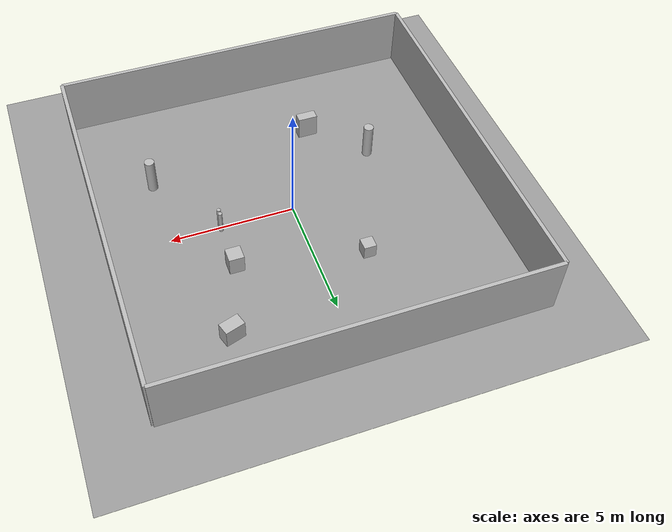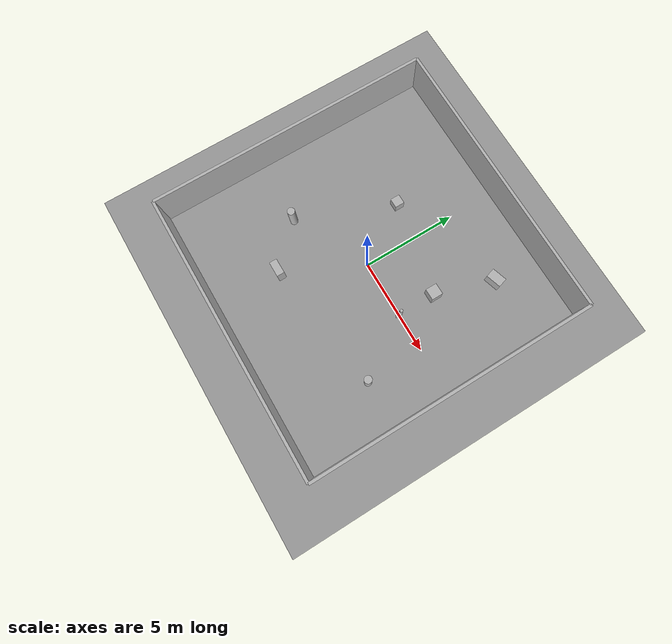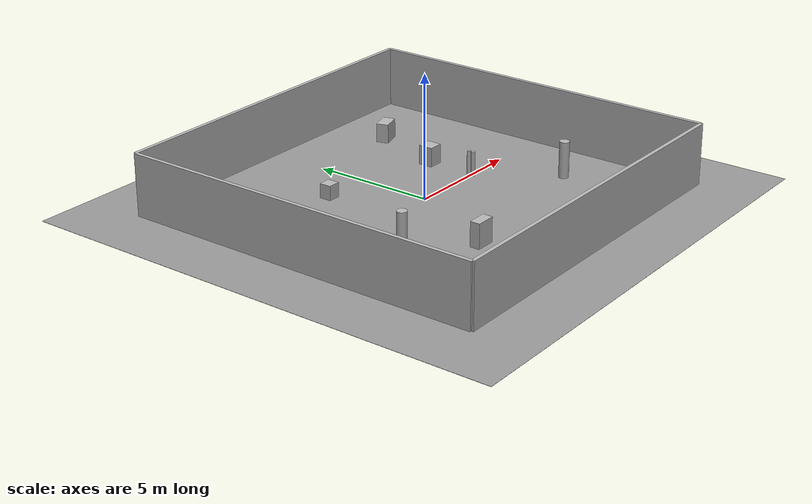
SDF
<?xml version="1.0" ?>
<!--
  room.world — 15m × 15m 仿真环境
  ================================
  模拟考核场景: 带围墙和障碍物的室内区域
  包含: 四面墙 + 6个障碍物 (箱子/柱子)
-->
<sdf version="1.6">
  <world name="room">

    <!-- ===== 物理引擎（bullet 兼容 VM）===== -->
    <physics type="ode">
      <max_step_size>0.001</max_step_size>
      <real_time_update_rate>1000</real_time_update_rate>
      <gravity>0 0 -9.81</gravity>
    </physics>

    <!-- ===== 光照 ===== -->
    <light name="sun" type="directional">
      <pose>0 0 10 0 0 0</pose>
      <diffuse>0.8 0.8 0.8 1</diffuse>
      <specular>0.2 0.2 0.2 1</specular>
      <direction>0.0 0.0 -1.0</direction>
      <cast_shadows>false</cast_shadows>
    </light>

    <!-- ===== 地面 ===== -->
    <model name="ground">
      <static>true</static>
      <link name="link">
        <collision name="collision">
          <geometry>
            <box>
              <size>20 20 0.01</size>
            </box>
          </geometry>
        </collision>
        <visual name="visual">
          <geometry>
            <box>
              <size>20 20 0.01</size>
            </box>
          </geometry>
          <material>
            <ambient>0.3 0.3 0.3 1</ambient>
            <diffuse>0.6 0.6 0.6 1</diffuse>
          </material>
        </visual>
      </link>
    </model>

    <!-- 1. 四面围墙 — 模拟 ~15m 区域                                    -->
    <!-- 用标准 3m×0.15m×2.5m 砖块拼接                                    -->

    <!-- 南墙 (y=-7.5) -->
    <model name="wall_south">
      <static>true</static>
      <pose>0 -7.5 1.25 0 0 0</pose>
      <link name="link">
        <collision name="collision">
          <geometry>
            <box>
              <size>15 0.15 2.5</size>
            </box>
          </geometry>
        </collision>
        <visual name="visual">
          <geometry>
            <box>
              <size>15 0.15 2.5</size>
            </box>
          </geometry>
          <material>
            <script>Gazebo/Bricks</script>
          </material>
        </visual>
      </link>
    </model>

    <!-- 北墙 (y=+7.5) -->
    <model name="wall_north">
      <static>true</static>
      <pose>0 7.5 1.25 0 0 0</pose>
      <link name="link">
        <collision name="collision">
          <geometry>
            <box>
              <size>15 0.15 2.5</size>
            </box>
          </geometry>
        </collision>
        <visual name="visual">
          <geometry>
            <box>
              <size>15 0.15 2.5</size>
            </box>
          </geometry>
          <material>
            <script>Gazebo/Bricks</script>
          </material>
        </visual>
      </link>
    </model>

    <!-- 西墙 (x=-7.5, 留一段缺口当门) -->
    <model name="wall_west">
      <static>true</static>
      <pose>-7.5 0 1.25 0 0 0</pose>
      <link name="link">
        <collision name="collision">
          <geometry>
            <box>
              <size>0.15 15 2.5</size>
            </box>
          </geometry>
        </collision>
        <visual name="visual">
          <geometry>
            <box>
              <size>0.15 15 2.5</size>
            </box>
          </geometry>
          <material>
            <script>Gazebo/Bricks</script>
          </material>
        </visual>
      </link>
    </model>

    <!-- 东墙 (x=+7.5, 留一段缺口) -->
    <model name="wall_east">
      <static>true</static>
      <pose>7.5 0 1.25 0 0 0</pose>
      <link name="link">
        <collision name="collision">
          <geometry>
            <box>
              <size>0.15 15 2.5</size>
            </box>
          </geometry>
        </collision>
        <visual name="visual">
          <geometry>
            <box>
              <size>0.15 15 2.5</size>
            </box>
          </geometry>
          <material>
            <script>Gazebo/Bricks</script>
          </material>
        </visual>
      </link>
    </model>

    <!-- 2. 内部障碍物 — 箱子/柱子, 分散在场地中                            -->

    <!-- 纸箱 (3, 2) -->
    <model name="box_1">
      <static>true</static>
      <pose>3 2 0.4 0 0 0</pose>
      <link name="link">
        <collision name="collision">
          <geometry>
            <box>
              <size>0.6 0.6 0.8</size>
            </box>
          </geometry>
        </collision>
        <visual name="visual">
          <geometry>
            <box>
              <size>0.6 0.6 0.8</size>
            </box>
          </geometry>
          <material>
            <script>Gazebo/Wood</script>
          </material>
        </visual>
      </link>
    </model>

    <!-- 纸箱 (-2, 3) -->
    <model name="box_2">
      <static>true</static>
      <pose>-2 3 0.3 0 0 0</pose>
      <link name="link">
        <collision name="collision">
          <geometry>
            <box>
              <size>0.5 0.5 0.6</size>
            </box>
          </geometry>
        </collision>
        <visual name="visual">
          <geometry>
            <box>
              <size>0.5 0.5 0.6</size>
            </box>
          </geometry>
          <material>
            <script>Gazebo/Wood</script>
          </material>
        </visual>
      </link>
    </model>

    <!-- 柱子 (5, -3) -->
    <model name="pillar_1">
      <static>true</static>
      <pose>5 -3 0.75 0 0 0</pose>
      <link name="link">
        <collision name="collision">
          <geometry>
            <cylinder>
              <radius>0.2</radius>
              <length>1.5</length>
            </cylinder>
          </geometry>
        </collision>
        <visual name="visual">
          <geometry>
            <cylinder>
              <radius>0.2</radius>
              <length>1.5</length>
            </cylinder>
          </geometry>
          <material>
            <script>Gazebo/Grey</script>
          </material>
        </visual>
      </link>
    </model>

    <!-- 柱子 (-4, -2) -->
    <model name="pillar_2">
      <static>true</static>
      <pose>-4 -2 0.75 0 0 0</pose>
      <link name="link">
        <collision name="collision">
          <geometry>
            <cylinder>
              <radius>0.2</radius>
              <length>1.5</length>
            </cylinder>
          </geometry>
        </collision>
        <visual name="visual">
          <geometry>
            <cylinder>
              <radius>0.2</radius>
              <length>1.5</length>
            </cylinder>
          </geometry>
          <material>
            <script>Gazebo/Grey</script>
          </material>
        </visual>
      </link>
    </model>

    <!-- 扁箱子 (-2, -4) -->
    <model name="box_3">
      <static>true</static>
      <pose>-2 -4 0.5 0 0 0</pose>
      <link name="link">
        <collision name="collision">
          <geometry>
            <box>
              <size>0.8 0.4 1.0</size>
            </box>
          </geometry>
        </collision>
        <visual name="visual">
          <geometry>
            <box>
              <size>0.8 0.4 1.0</size>
            </box>
          </geometry>
          <material>
            <script>Gazebo/Wood</script>
          </material>
        </visual>
      </link>
    </model>

    <!-- 箱子 (4, 5) -->
    <model name="box_4">
      <static>true</static>
      <pose>4 5 0.4 0 0 0.3</pose>
      <link name="link">
        <collision name="collision">
          <geometry>
            <box>
              <size>0.8 0.5 0.8</size>
            </box>
          </geometry>
        </collision>
        <visual name="visual">
          <geometry>
            <box>
              <size>0.8 0.5 0.8</size>
            </box>
          </geometry>
          <material>
            <script>Gazebo/Wood</script>
          </material>
        </visual>
      </link>
    </model>

    <!-- 人体跟随测试 (双柱模拟双腿, 非静态, 可在 Gazebo 里拖拽)          -->
    <model name="target_human">
      <static>false</static>
      <pose>3 0 0 0 0 0</pose>
      <link name="left_leg">
        <collision name="collision">
          <geometry>
            <cylinder>
              <radius>0.08</radius>
              <length>1.0</length>
            </cylinder>
          </geometry>
        </collision>
        <visual name="visual">
          <geometry>
            <cylinder>
              <radius>0.08</radius>
              <length>1.0</length>
            </cylinder>
          </geometry>
          <material>
            <script>Gazebo/Red</script>
          </material>
        </visual>
        <pose>0 -0.1 0.5 0 0 0</pose>
      </link>
      <link name="right_leg">
        <collision name="collision">
          <geometry>
            <cylinder>
              <radius>0.08</radius>
              <length>1.0</length>
            </cylinder>
          </geometry>
        </collision>
        <visual name="visual">
          <geometry>
            <cylinder>
              <radius>0.08</radius>
              <length>1.0</length>
            </cylinder>
          </geometry>
          <material>
            <script>Gazebo/Red</script>
          </material>
        </visual>
        <pose>0 0.1 0.5 0 0 0</pose>
      </link>
    </model>

  </world>
</sdf>
